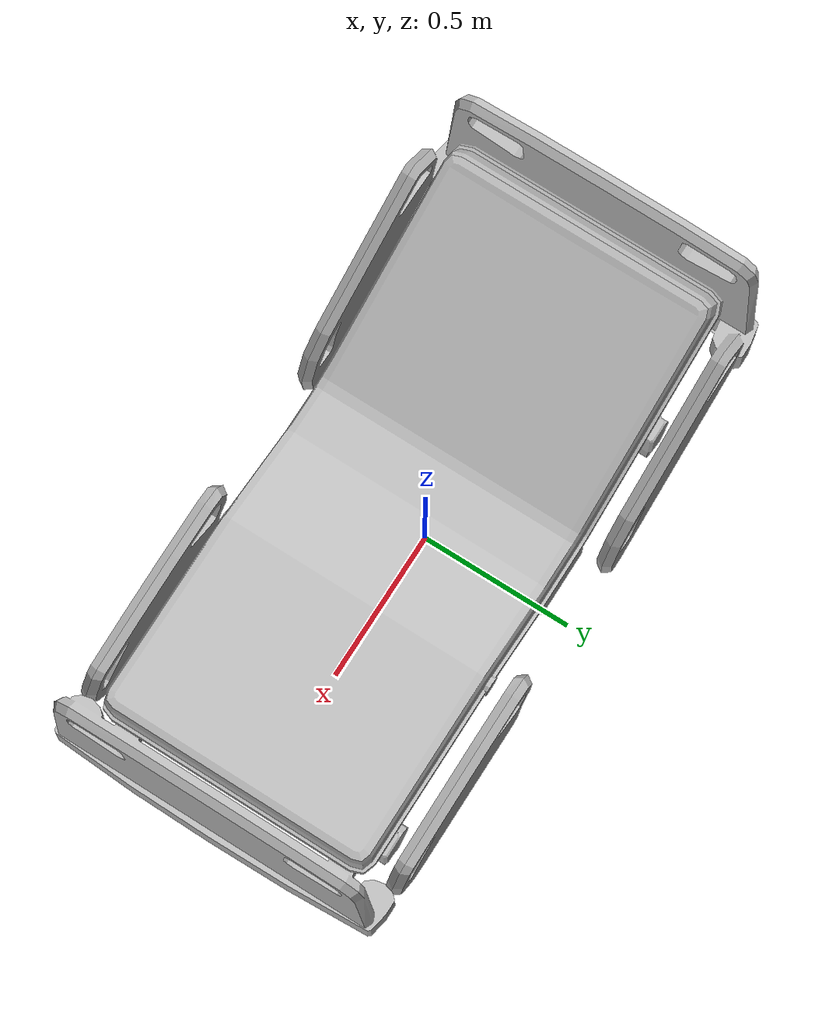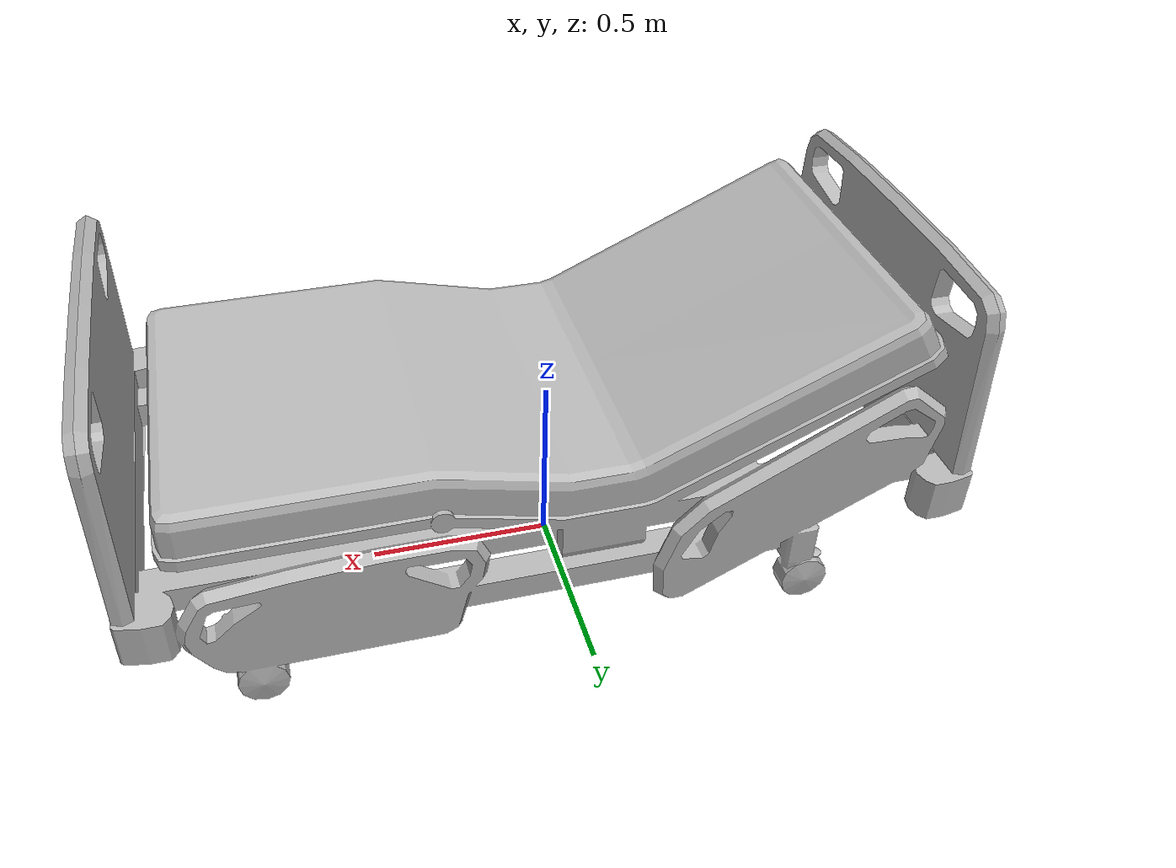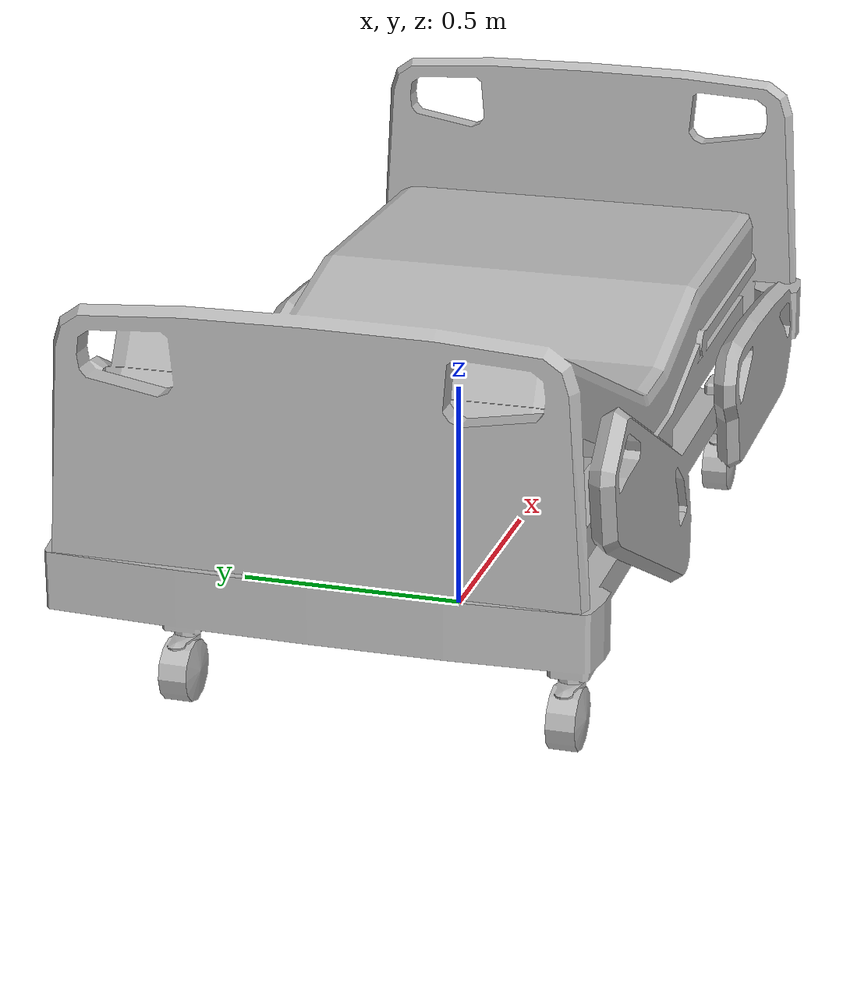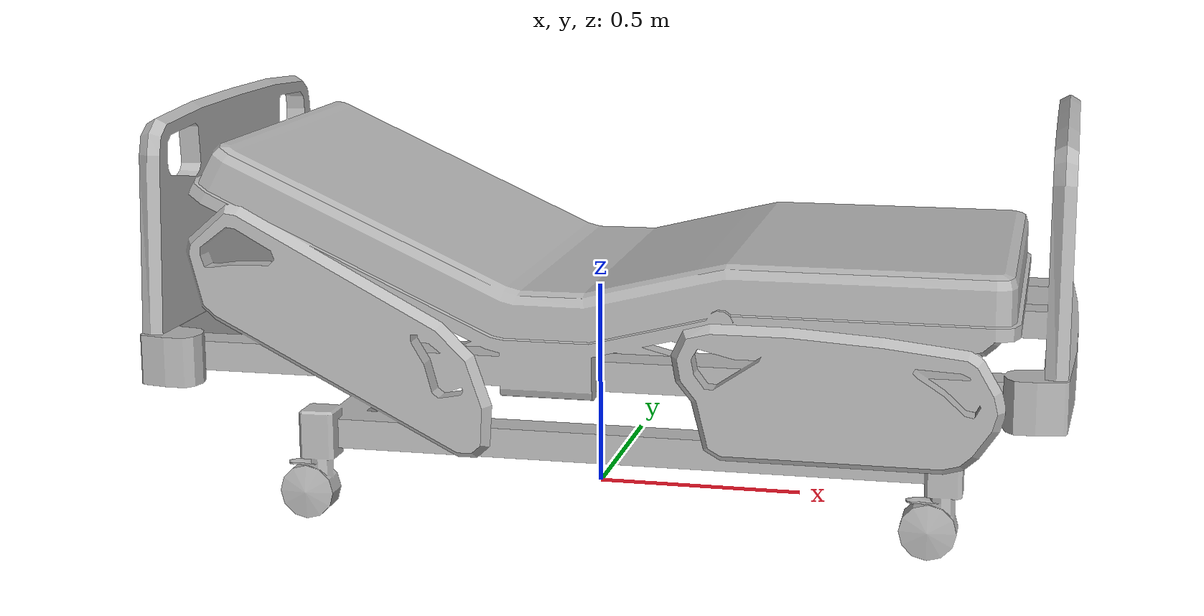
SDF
<?xml version="1.0"?>

<sdf version="1.6">
  <model name='CGMVanguard'>
    <link name="body">
      <pose>0 0 0 0 0 1.5708</pose>

      <visual name="visual">
        <geometry>
          <mesh>
            <uri>model://CGMVanguard/meshes/CGMVanguard.obj</uri>
            <scale>0.01 0.01 0.01</scale>
          </mesh>
        </geometry>
      </visual>

      <collision name="collision">
        <geometry>
          <mesh>
            <uri>model://CGMVanguard/meshes/CGMVanguard.obj</uri>
            <scale>0.01 0.01 0.01</scale>
          </mesh>
        </geometry>
      </collision>

    </link>
  </model>
</sdf>
